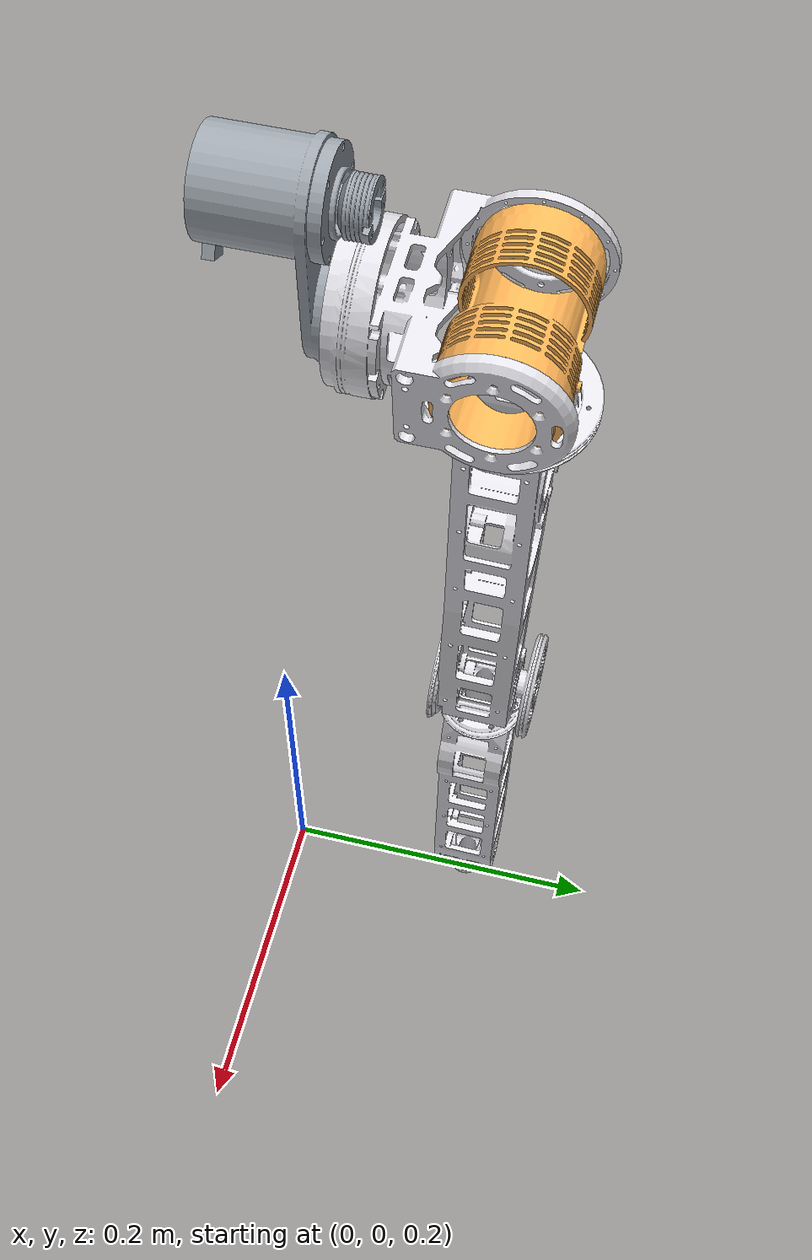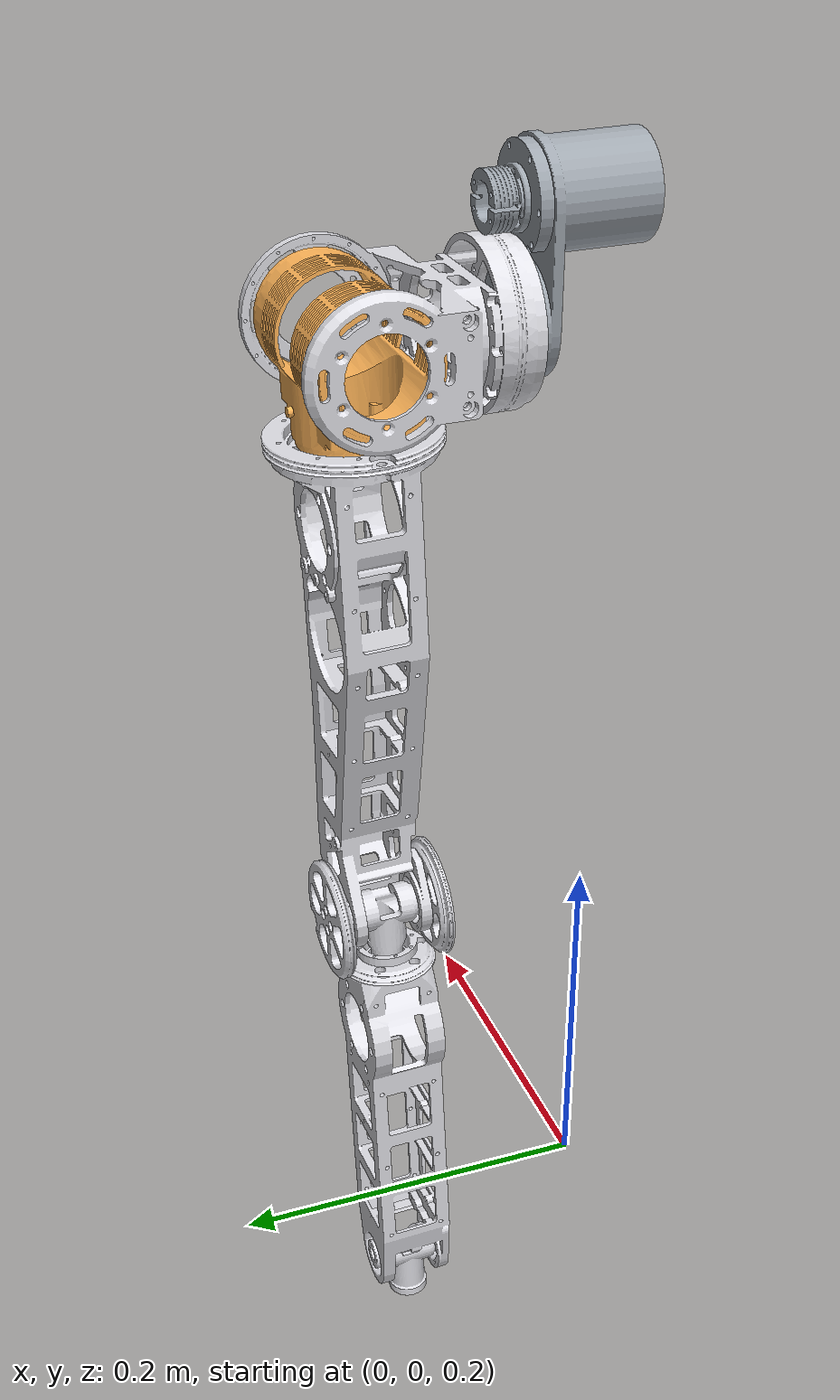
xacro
<?xml version="1.0"?>
<robot xmlns:xacro="http://www.ros.org/wiki/xacro" name="arm_R">
    <xacro:arg name="can_interface" default="can2" />
    <!-- Defaults are unique and start at the previously used ID 2; adjust to the actual bus IDs. -->
    <xacro:arg name="motor1_id" default="1" />
    <xacro:arg name="motor2_id" default="2" />
    <xacro:arg name="motor3_id" default="3" />
    <xacro:arg name="motor4_id" default="4" />
    <xacro:arg name="motor5_id" default="5" />
    <xacro:arg name="motor6_id" default="6" />
    <xacro:arg name="joint_speed_limits_dps" default="30,30,30,30,30,30" />
    <xacro:arg name="joint_speed_scale" default="0.6" />
    <xacro:arg name="joint_speed_offset_dps" default="10.0" />
    <xacro:arg name="initialize_motors_to_zero" default="false" />
    <xacro:arg name="tendon_compensation" default="false" />
    <xacro:arg name="tendon_profile" default="" />

    <!-- Import arm_R urdf file -->
    <xacro:include filename="$(find arm_description)/urdf/Arm_R.urdf.xacro" />

    <!-- Import control_xacro -->
    <xacro:include filename="arm_R.ros2_control.xacro" />

    <xacro:arm_R_ros2_control name="ArmSystem"
    can_interface="$(arg can_interface)"
    motor1_id="$(arg motor1_id)"
    motor2_id="$(arg motor2_id)"
    motor3_id="$(arg motor3_id)"
    motor4_id="$(arg motor4_id)"
    motor5_id="$(arg motor5_id)"
    motor6_id="$(arg motor6_id)"
    joint_speed_limits_dps="$(arg joint_speed_limits_dps)"
    joint_speed_scale="$(arg joint_speed_scale)"
    joint_speed_offset_dps="$(arg joint_speed_offset_dps)"
    initialize_motors_to_zero="$(arg initialize_motors_to_zero)"
    tendon_compensation="$(arg tendon_compensation)"
    tendon_profile="$(arg tendon_profile)"/>

</robot>

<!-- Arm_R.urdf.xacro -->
<robot  name ="1" xmlns:xacro="http://www.ros.org/wiki/xacro">

  <link name="world"/>
  <link name="jian"/>
  <link name="base">
    <visual>
      <origin xyz="0 0 0" rpy="0 0 0" />
      <geometry>
        <mesh filename="package://arm_description/meshes/base.STL" />
      </geometry>
      <material name="gray_metal0">
        <color rgba="0.615686274509804 0.643137254901961 0.674509803921569 1"/>
      </material>
    </visual>
    <collision>
      <origin xyz="0.000047829933 -0.028261963278 -0.009999998845" rpy="0 0 0" />
      <geometry>
        <box size="0.058904342 0.115476081 0.078000001" />
      </geometry>
    </collision>
    <inertial>
      <origin xyz="0.000133234250593912 -0.0502886870475106 -0.0155365804299716" rpy="0 0 0" />
      <mass value="0.46408773981784" />
      <inertia ixx="0.000242751952980255" ixy="-0.00000142060879184469" ixz="0.00000112539545114494" iyy="0.000222785257612238" iyz="0.00000183005835190381" izz="0.000267372422167116" />
    </inertial>
  </link>

  <link name="Arm1">
    <visual>
      <origin xyz="0 0 0" rpy="0 0 0" />
      <geometry>
        <mesh filename="package://arm_description/meshes/Arm1.STL" />
      </geometry>
      <material name="gray_metal1">
        <color rgba="0.866666666666667 0.866666666666667 0.890196078431372 1"/>
      </material>
    </visual>
    <collision>
      <origin xyz="-0.000216692686 0 -0.022813303396" rpy="0 0 0" />
      <geometry>
        <box size="0.083066614 0.111297736 0.119373401" />
      </geometry>
    </collision>
    <inertial>
      <origin xyz="0.000150992141374828 -1.18281100739777e-7 -0.0412528574225757" rpy="0 0 0" />
      <mass value="0.21911116251589" />
      <inertia ixx="0.000181217973254358" ixy="7.47846095040869e-7" ixz="-3.24314358544307e-7" iyy="0.000169909369100917" iyz="4.35206672139014e-8" izz="0.000227358292966564" />
    </inertial>
  </link>

  <link name="Arm2">
    <visual>
      <origin xyz="0 0 0" rpy="0 0 0" />
      <geometry>
        <mesh filename="package://arm_description/meshes/Arm2.STL" />
      </geometry>
      <material name="gray_metal2">
        <color rgba="1 0.705882352941176 0.341176470588235 1"/>
      </material>
    </visual>
    <collision>
      <origin xyz="0.00825959444 0 0" rpy="0 0 0" />
      <geometry>
        <box size="0.079480813 0.063000003 0.099000001" />
      </geometry>
    </collision>
    <inertial>
      <origin xyz="0.0146622343202617 1.94866163386043e-7 3.45567412359267e-8" rpy="0 0 0" />
      <mass value="0.154988178865956" />
      <inertia ixx="0.000211780543661148" ixy="-3.85744368736297e-10" ixz="1.55478402750291e-10" iyy="0.000222001553475746" iyz="1.79181301949444e-9" izz="0.000145066868672833" />
    </inertial>
  </link>

  <link name="Arm3">
    <visual>
      <origin xyz="0 0 0" rpy="0 0 0" />
      <geometry>
        <mesh filename="package://arm_description/meshes/Arm3.STL" />
      </geometry>
      <material name="gray_metal3">
        <color rgba="0.866666666666667 0.866666666666667 0.890196078431372 1"/>
      </material>
    </visual>
    <collision name="Arm3_lower">
      <origin xyz="0 0 0.050161435734" rpy="0 0 0" />
      <geometry>
        <cylinder radius="0.043200005" length="0.01432287" />
      </geometry>
    </collision>
    <collision name="Arm3_middle">
      <origin xyz="0 0 0.127743640371" rpy="0 0 0" />
      <geometry>
        <cylinder radius="0.038393758" length="0.140841542" />
      </geometry>
    </collision>
    <collision name="Arm3_upper">
      <origin xyz="0 0.015 0.23581089158" rpy="0 0 0" />
      <geometry>
        <cylinder radius="0.027177428" length="0.081292963" />
      </geometry>
    </collision>
    <inertial>
      <origin xyz="0.0000330549820099224 0.00474590330950531 0.151500878129098" rpy="0 0 0" />
      <mass value="0.327772135843657" />
      <inertia ixx="0.00191130244856678" ixy="0.00000245279386006661" ixz="0.00000112730586793336" iyy="0.00186092369180326" iyz="-0.00013950718787775" izz="0.000292578223388564" />
    </inertial>
  </link>

  <link name="Arm4">
    <visual>
      <origin xyz="0 0 0" rpy="0 0 0" />
      <geometry>
        <mesh filename="package://arm_description/meshes/Arm4.STL" />
      </geometry>
      <material name="gray_metal4">
        <color rgba="0.866666666666667 0.866666666666667 0.890196078431372 1"/>
      </material>
    </visual>
    <collision>
      <origin xyz="0.000490685925 -0.000001041219 -0.002000000328" rpy="0 0 0" />
      <geometry>
        <cylinder radius="0.033125658" length="0.060000004" />
      </geometry>
    </collision>
    <inertial>
      <origin xyz="0.00282463681741374 -0.000124777450242626 -0.00173470608166383" rpy="0 0 0" />
      <mass value="0.0890927669306798" />
      <inertia ixx="0.000022835092496068" ixy="3.48341535632016e-7" ixz="-1.13185756181516e-7" iyy="0.0000258271542194299" iyz="2.83053639874475e-9" izz="0.0000349152254098732" />
    </inertial>
  </link>

  <link name="Arm5">
    <visual>
      <origin xyz="0 0 0" rpy="0 0 0" />
      <geometry>
        <mesh filename="package://arm_description/meshes/Arm5.STL" />
      </geometry>
      <material name="gray_metal5">
        <color rgba="0.866666666666667 0.866666666666667 0.890196078431372 1"/>
      </material>
    </visual>
    <collision>
      <origin xyz="0.000035859644 0 0.140049996786" rpy="0 0 0" />
      <geometry>
        <box size="0.051928201 0.061044691 0.204899994" />
      </geometry>
    </collision>
    <inertial>
      <origin xyz="0.000738721785152233 -0.00000736304565833072 0.12292136526893" rpy="0 0 0" />
      <mass value="0.174429481898043" />
      <inertia ixx="0.000656584618563486" ixy="-6.09109086272826e-8" ixz="-0.00000587072848763257" iyy="0.000640323705392772" iyz="3.65247168098218e-9" izz="0.0000879308371134819" />
    </inertial>
  </link>

  <link name="Arm6">
    <visual>
      <origin xyz="0 0 0" rpy="0 0 0" />
      <geometry>
        <mesh filename="package://arm_description/meshes/Arm6.STL" />
      </geometry>
      <material name="gray_metal6">
        <color rgba="0.866666666666667 0.866666666666667 0.890196078431372 1"/>
      </material>
    </visual>
    <collision>
      <origin xyz="0.009827564005 -0.000983487349 -0.000749534927" rpy="0 0 0" />
      <geometry>
        <box size="0.041521635 0.022984678 0.040059451" />
      </geometry>
    </collision>
    <inertial>
      <origin xyz="0.00850167303930216 -0.000430378756167412 -0.000509704556956772" rpy="0 0 0" />
      <mass value="0.0285966252790591" />
      <inertia ixx="0.00000388114642484229" ixy="1.16534425010448e-7" ixz="-2.15902969594172e-7" iyy="0.00000617876117230397" iyz="1.08930868228997e-8" izz="0.0000044196280896597" />
    </inertial>
  </link>

  <joint name="Joint0" type="fixed">
    <parent link="world" />
    <child link="jian" />
    <origin xyz="0 0 0.8" rpy="0 0 0" />
    <axis xyz="0 0 0" />
    <hardware>
      <motorType>None</motorType>
      <motorDirection>1</motorDirection>
      <armature>0</armature>
    </hardware>
  </joint>
  <joint name="Joint0_1" type="fixed">
    <parent link="jian" />
    <child link="base" />
    <origin xyz="0 0.039 -0.0676" rpy="-1.5708 0 0" />
    <axis xyz="0 0 0" />
    <hardware>
      <motorType>None</motorType>
      <motorDirection>1</motorDirection>
      <armature>0</armature>
    </hardware>
  </joint>
  <joint name="Joint1" type="revolute">
    <parent link="base" />
    <child link="Arm1" />
    <origin xyz="0 0 0.0939" rpy="0 0 1.5708" />
    <axis xyz="0 0 1" />
    <!-- Position limits are radians. Effort is required by URDF; this position-only hardware does not use it. -->
    <limit lower="-2.584483556353" upper="2.542246588455" effort="1.0" velocity="0.174533" />
    <hardware>
      <motorType>None</motorType>
      <motorDirection>1</motorDirection>
      <armature>0</armature>
    </hardware>
  </joint>

  <joint name="Joint2" type="revolute">
    <parent link="Arm1" />
    <child link="Arm2" />
    <origin xyz="0 0 0" rpy="-1.5708 0.035257 0.050557" />
    <axis xyz="0 0 1" />
    <limit lower="-2.310117797940" upper="0.105417886820" effort="1.0" velocity="0.174533" />
    <hardware>
      <motorType>None</motorType>
      <motorDirection>1</motorDirection>
      <armature>0</armature>
    </hardware>
  </joint>

  <joint name="Joint3" type="revolute">
    <parent link="Arm2" />
    <child link="Arm3" />
    <origin xyz="0 0 0" rpy="-1.5708 0.0017837 -1.5708" />
    <axis xyz="0 0 -1" />
    <limit lower="-1.679181273344" upper="1.257160660212" effort="1.0" velocity="0.174533" />
    <hardware>
      <motorType>None</motorType>
      <motorDirection>1</motorDirection>
      <armature>0</armature>
    </hardware>
  </joint>

  <joint name="Joint4" type="revolute">
    <parent link="Arm3" />
    <child link="Arm4" />
    <origin xyz="0 0 0.312" rpy="-1.5708 -1.5203 1.569" />
    <axis xyz="0 0 -1" />
    <limit lower="-0.872490093072" upper="2.334028808692" effort="1.0" velocity="0.174533" />
    <hardware>
      <motorType>None</motorType>
      <motorDirection>1</motorDirection>
      <armature>0</armature>
    </hardware>
  </joint>

  <joint name="Joint5" type="revolute">
    <parent link="Arm4" />
    <child link="Arm5" />
    <origin xyz="0 0 0" rpy="1.5708 1.569 1.5203" />
    <axis xyz="0 0 1" />
    <limit lower="-2.904576941169" upper="2.657787384937" effort="1.0" velocity="0.174533" />
    <hardware>
      <motorType>None</motorType>
      <motorDirection>1</motorDirection>
      <armature>0</armature>
    </hardware>
  </joint>

  <joint name="Joint6" type="revolute">
    <parent link="Arm5" />
    <child link="Arm6" />
    <origin xyz="0 0 0.24" rpy="-0.96144 -1.5092 0.96055" />
    <axis xyz="0.035205 -0.0017814 -1" />
    <limit lower="-1.635024443268" upper="1.705884810899" effort="1.0" velocity="0.174533" />
    <hardware>
      <motorType>None</motorType>
      <motorDirection>1</motorDirection>
      <armature>0</armature>
    </hardware>
  </joint>

</robot>
